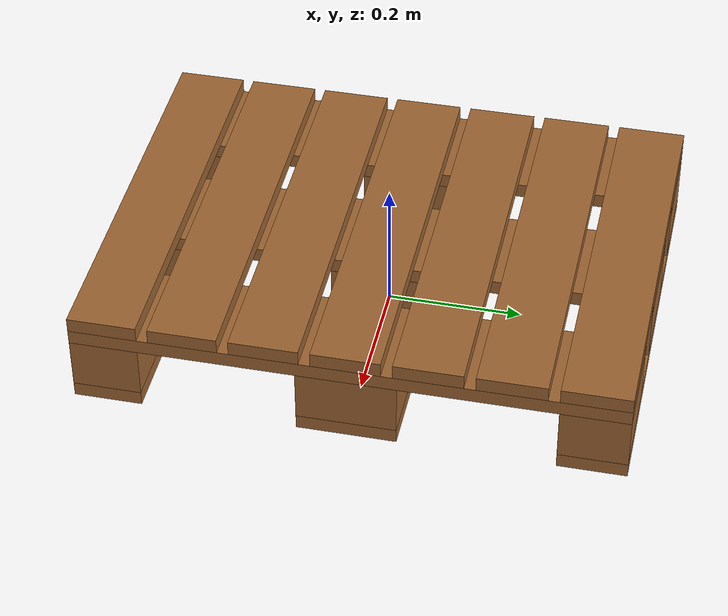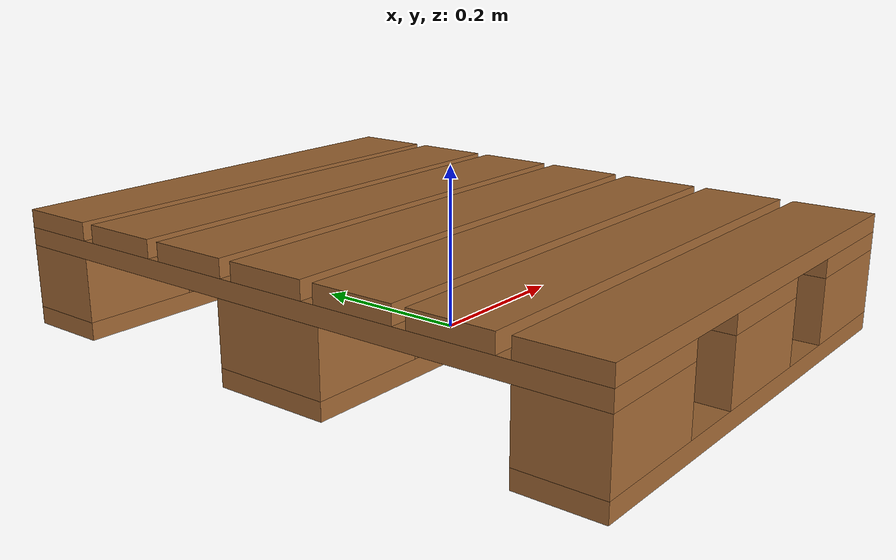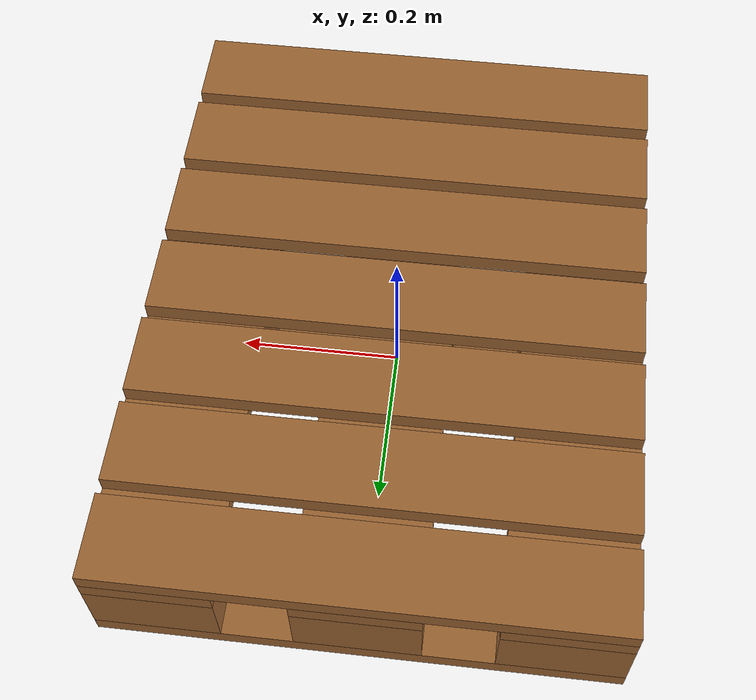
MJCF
<?xml version="1.0"?>
<mujoco model="epal6_pallet">
  <custom>
    <text name="pallet_provenance" data="epal6_published_standard_plus_cad_measurement" />
  </custom>
  <worldbody>
    <body name="pallet" pos="0 0 0">
      <geom name="bottom_board_0" type="box" size="0.3 0.05 0.011" pos="0 -0.35 0.011" rgba="0.62 0.40 0.20 1" />
      <geom name="bottom_board_1" type="box" size="0.3 0.0725 0.011" pos="0 0 0.011" rgba="0.62 0.40 0.20 1" />
      <geom name="bottom_board_2" type="box" size="0.3 0.05 0.011" pos="0 0.35 0.011" rgba="0.62 0.40 0.20 1" />
      <geom name="block_x0_y0" type="box" size="0.0725 0.05 0.039" pos="-0.2275 -0.35 0.061" rgba="0.62 0.40 0.20 1" />
      <geom name="block_x0_y1" type="box" size="0.0725 0.0725 0.039" pos="-0.2275 0 0.061" rgba="0.62 0.40 0.20 1" />
      <geom name="block_x0_y2" type="box" size="0.0725 0.05 0.039" pos="-0.2275 0.35 0.061" rgba="0.62 0.40 0.20 1" />
      <geom name="block_x1_y0" type="box" size="0.0725 0.05 0.039" pos="0 -0.35 0.061" rgba="0.62 0.40 0.20 1" />
      <geom name="block_x1_y1" type="box" size="0.0725 0.0725 0.039" pos="0 0 0.061" rgba="0.62 0.40 0.20 1" />
      <geom name="block_x1_y2" type="box" size="0.0725 0.05 0.039" pos="0 0.35 0.061" rgba="0.62 0.40 0.20 1" />
      <geom name="block_x2_y0" type="box" size="0.0725 0.05 0.039" pos="0.2275 -0.35 0.061" rgba="0.62 0.40 0.20 1" />
      <geom name="block_x2_y1" type="box" size="0.0725 0.0725 0.039" pos="0.2275 0 0.061" rgba="0.62 0.40 0.20 1" />
      <geom name="block_x2_y2" type="box" size="0.0725 0.05 0.039" pos="0.2275 0.35 0.061" rgba="0.62 0.40 0.20 1" />
      <geom name="stringer_0" type="box" size="0.0725 0.4 0.011" pos="-0.2275 0 0.111" rgba="0.62 0.40 0.20 1" />
      <geom name="stringer_1" type="box" size="0.0725 0.4 0.011" pos="0 0 0.111" rgba="0.62 0.40 0.20 1" />
      <geom name="stringer_2" type="box" size="0.0725 0.4 0.011" pos="0.2275 0 0.111" rgba="0.62 0.40 0.20 1" />
      <geom name="top_board_0" type="box" size="0.3 0.05 0.011" pos="0 -0.35 0.133" rgba="0.62 0.40 0.20 1" />
      <geom name="top_board_1" type="box" size="0.3 0.05 0.011" pos="0 -0.233333333333 0.133" rgba="0.62 0.40 0.20 1" />
      <geom name="top_board_2" type="box" size="0.3 0.05 0.011" pos="0 -0.116666666667 0.133" rgba="0.62 0.40 0.20 1" />
      <geom name="top_board_3" type="box" size="0.3 0.05 0.011" pos="0 0 0.133" rgba="0.62 0.40 0.20 1" />
      <geom name="top_board_4" type="box" size="0.3 0.05 0.011" pos="0 0.116666666667 0.133" rgba="0.62 0.40 0.20 1" />
      <geom name="top_board_5" type="box" size="0.3 0.05 0.011" pos="0 0.233333333333 0.133" rgba="0.62 0.40 0.20 1" />
      <geom name="top_board_6" type="box" size="0.3 0.05 0.011" pos="0 0.35 0.133" rgba="0.62 0.40 0.20 1" />
    </body>
  </worldbody>
</mujoco>
